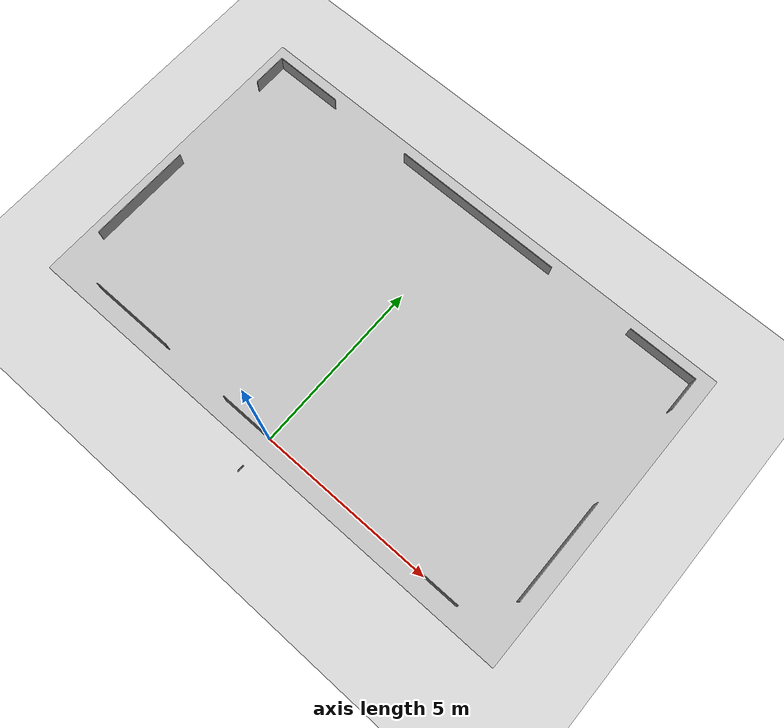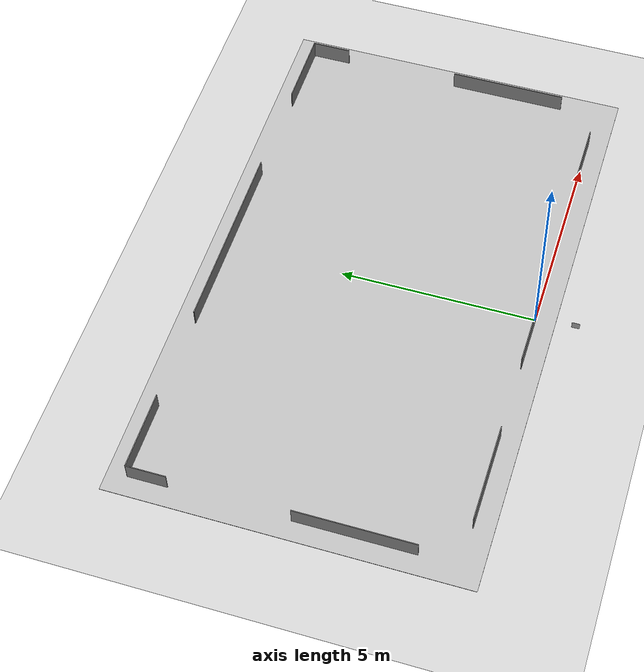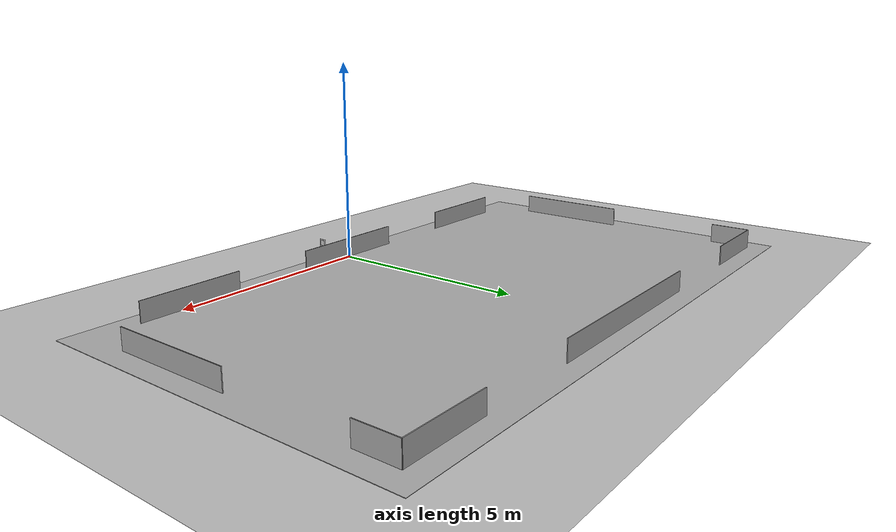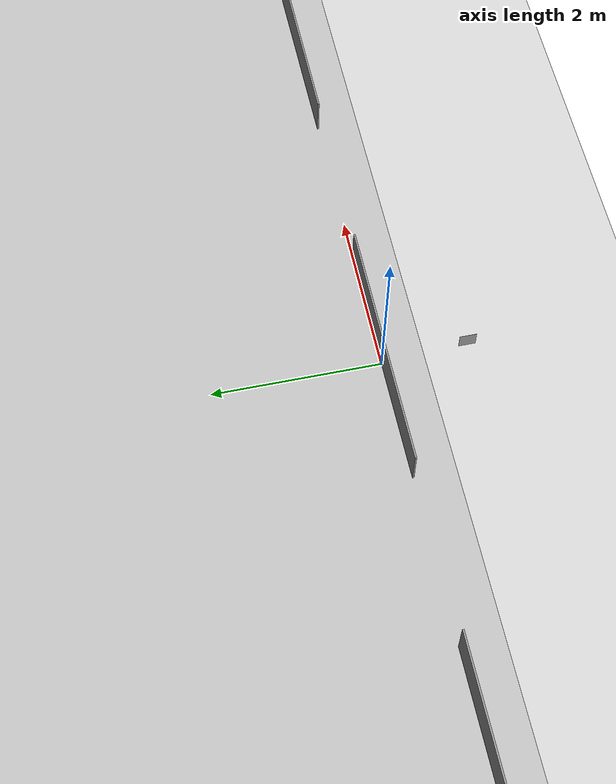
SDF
<sdf version="1.4">
 <world name="LLSF">
  <physics type="ode">
   <max_step_size>0.004</max_step_size>
   <real_time_factor>1</real_time_factor>
   <real_time_update_rate>300</real_time_update_rate>
  </physics>
  <scene><ambient>0.5 0.5 0.5 1.0</ambient><shadows>0</shadows></scene>
  <include><uri>model://ground_plane</uri></include>
  <include><uri>model://sun</uri></include>
  <include><uri>model://logistics_league_field_2017</uri></include>
  <include><name>tag_01</name><uri>model://tag</uri><pose>0 -1 0.2 0 0 0</pose></include>
  <include><name>tag_02</name><uri>model://tag</uri><pose>0 -1 0.2 0 0 0</pose></include>
  <include><name>tag_17</name><uri>model://tag</uri><pose>0 -1 0.2 0 0 0</pose></include>
  <include><name>tag_18</name><uri>model://tag</uri><pose>0 -1 0.2 0 0 0</pose></include>
  <include><name>tag_33</name><uri>model://tag</uri><pose>0 -1 0.2 0 0 0</pose></include>
  <include><name>tag_34</name><uri>model://tag</uri><pose>0 -1 0.2 0 0 0</pose></include>
  <include><name>tag_177</name><uri>model://tag</uri><pose>0 -1 0.2 0 0 0</pose></include>
  <include><name>tag_178</name><uri>model://tag</uri><pose>0 -1 0.2 0 0 0</pose></include>
  <include><name>tag_65</name><uri>model://tag</uri><pose>0 -1 0.2 0 0 0</pose></include>
  <include><name>tag_66</name><uri>model://tag</uri><pose>0 -1 0.2 0 0 0</pose></include>
  <include><name>tag_81</name><uri>model://tag</uri><pose>0 -1 0.2 0 0 0</pose></include>
  <include><name>tag_82</name><uri>model://tag</uri><pose>0 -1 0.2 0 0 0</pose></include>
  <include><name>tag_97</name><uri>model://tag</uri><pose>0 -1 0.2 0 0 0</pose></include>
  <include><name>tag_98</name><uri>model://tag</uri><pose>0 -1 0.2 0 0 0</pose></include>
  <include><name>tag_113</name><uri>model://tag</uri><pose>0 -1 0.2 0 0 0</pose></include>
  <include><name>tag_114</name><uri>model://tag</uri><pose>0 -1 0.2 0 0 0</pose></include>
  <include><name>tag_129</name><uri>model://tag</uri><pose>0 -1 0.2 0 0 0</pose></include>
  <include><name>tag_130</name><uri>model://tag</uri><pose>0 -1 0.2 0 0 0</pose></include>
  <include><name>tag_145</name><uri>model://tag</uri><pose>0 -1 0.2 0 0 0</pose></include>
  <include><name>tag_146</name><uri>model://tag</uri><pose>0 -1 0.2 0 0 0</pose></include>
  <include><name>tag_161</name><uri>model://tag</uri><pose>0 -1 0.2 0 0 0</pose></include>
  <include><name>tag_162</name><uri>model://tag</uri><pose>0 -1 0.2 0 0 0</pose></include>
  <include><name>tag_49</name><uri>model://tag</uri><pose>0 -1 0.2 0 0 0</pose></include>
  <include><name>tag_50</name><uri>model://tag</uri><pose>0 -1 0.2 0 0 0</pose></include>
  <include><name>tag_193</name><uri>model://tag</uri><pose>0 -1 0.2 0 0 0</pose></include>
  <include><name>tag_194</name><uri>model://tag</uri><pose>0 -1 0.2 0 0 0</pose></include>
  <include><name>tag_210</name><uri>model://tag</uri><pose>0 -1 0.2 0 0 0</pose></include>
  <include><name>tag_209</name><uri>model://tag</uri><pose>0 -1 0.2 0 0 0</pose></include>
  <plugin name="llsf_refbox_comm" filename="libllsf_refbox_comm.so"/>
  <plugin name="mps_opcua" filename="libmps_opcua.so"/>
  <plugin name="timesync" filename="libtimesync.so"/>
  <plugin name="mps_placement" filename="libmps_placement.so"/>
 </world>
</sdf>

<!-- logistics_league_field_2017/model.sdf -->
<sdf version="1.5">
  <model name="Logistics League Field 2017">
    <pose>0 4 0 0 0 0</pose>
    <static>true</static>
    <link name="field">
      <pose>0 0 0.01 0 0 0</pose>
      <collision name="collision">
        <geometry>
          <plane>
            <normal>0 0 1</normal>
            <size>15 9</size>
          </plane>
        </geometry>
        <surface>
          <friction>
            <ode>
              <mu>100</mu>
              <mu2>50</mu2>
            </ode>
          </friction>
        </surface>
      </collision>
      <visual name="carpet">
        <cast_shadows>false</cast_shadows>
        <geometry>
          <plane>
            <normal>0 0 1</normal>
            <size>15 9</size>
          </plane>
        </geometry>
        <material>
          <script>
            <uri>model://logistics_league_field_2017/materials/scripts/</uri>
            <uri>model://logistics_league_field_2017/materials/textures/</uri>
            <name>Logistics_League_Field/Image</name>
          </script>
        </material>
      </visual>
    </link>

    <link name="wall_bottom_middle_left_outer">
      <pose>-4.75 -4 0.25 0 0 1.570796327</pose>
      <visual name="wall_bottom_middle_left_outer-visual">
        <geometry>
          <box>
            <size>.02 2.5 .5</size>
          </box>
        </geometry>
        <cast_shadows>false</cast_shadows>
        <material>
          <script>
            <uri>file://media/materials/scripts/gazebo.material</uri>
            <name>Gazebo/Grey</name>
          </script>
        </material>
      </visual>
      <collision name="wall_bottom_middle_left_outer-collision">
        <geometry>
          <box>
            <size>.02 2.5 .5</size>
          </box>
        </geometry>
      </collision>
    </link>

    <link name="wall_bottom_middle">
      <pose>0 -4 0.25 0 0 1.570796327</pose>
      <visual name="wall_bottom_middle_right-visual">
        <geometry>
          <box>
            <size>.02 3 .5</size>
          </box>
        </geometry>
        <cast_shadows>false</cast_shadows>
        <material>
          <script>
            <uri>file://media/materials/scripts/gazebo.material</uri>
            <name>Gazebo/Grey</name>
          </script>
        </material>
      </visual>
      <collision name="wall_bottom_middle_right-collision">
        <geometry>
          <box>
            <size>.02 3 .5</size>
          </box>
        </geometry>
      </collision>
    </link>

    <link name="wall_bottom_middle_right_outer">
      <pose>4.75 -4 0.25 0 0 1.570796327</pose>
      <visual name="wall_bottom_middle_right_outer-visual">
        <geometry>
          <box>
            <size>.02 2.5 .5</size>
          </box>
        </geometry>
        <cast_shadows>false</cast_shadows>
        <material>
          <script>
            <uri>file://media/materials/scripts/gazebo.material</uri>
            <name>Gazebo/Grey</name>
          </script>
        </material>
      </visual>
      <collision name="wall_bottom_middle_right_outer-collision">
        <geometry>
          <box>
            <size>.02 2.5 .5</size>
          </box>
        </geometry>
      </collision>
    </link>

    <link name="wall_left_bottom">
      <pose>-7 -1.5 0.25 0 0 0</pose>
      <visual name="wall_left_bottom-visual">
        <geometry>
          <box>
            <size>.02 3 .5</size>
          </box>
        </geometry>
        <cast_shadows>false</cast_shadows>
        <material>
          <script>
            <uri>file://media/materials/scripts/gazebo.material</uri>
            <name>Gazebo/Grey</name>
          </script>
        </material>
      </visual>
      <collision name="wall_left_bottom-collision">
        <geometry>
          <box>
            <size>.02 3 .5</size>
          </box>
        </geometry>
      </collision>
    </link>

    <link name="wall_left_top">
      <pose>-7 3.5 0.25 0 0 0</pose>
      <visual name="wall_left_top-visual">
        <geometry>
          <box>
            <size>.02 1 .5</size>
          </box>
        </geometry>
        <cast_shadows>false</cast_shadows>
        <material>
          <script>
            <uri>file://media/materials/scripts/gazebo.material</uri>
            <name>Gazebo/Grey</name>
          </script>
        </material>
      </visual>
      <collision name="wall_left_top-collision">
        <geometry>
          <box>
            <size>.02 1 .5</size>
          </box>
        </geometry>
      </collision>
    </link>

    <link name="wall_right_bottom">
      <pose>7 -1.5 0.25 0 0 0</pose>
      <visual name="wall_right_bottom-visual">
        <geometry>
          <box>
            <size>.02 3 .5</size>
          </box>
        </geometry>
        <cast_shadows>false</cast_shadows>
        <material>
          <script>
            <uri>file://media/materials/scripts/gazebo.material</uri>
            <name>Gazebo/Grey</name>
          </script>
        </material>
      </visual>
      <collision name="wall_right_bottom-collision">
        <geometry>
          <box>
            <size>.02 3 .5</size>
          </box>
        </geometry>
      </collision>
    </link>

    <link name="wall_right_top">
      <pose>7 3.5 0.25 0 0 0</pose>
      <visual name="wall_right_top-visual">
        <geometry>
          <box>
            <size>.02 1 .5</size>
          </box>
        </geometry>
        <cast_shadows>false</cast_shadows>
        <material>
          <script>
            <uri>file://media/materials/scripts/gazebo.material</uri>
            <name>Gazebo/Grey</name>
          </script>
        </material>
      </visual>
      <collision name="wall_right_top-collision">
        <geometry>
          <box>
            <size>.02 1 .5</size>
          </box>
        </geometry>
      </collision>
    </link>

    <link name="wall_top_middle">
      <pose>0 4 0.25 0 0 1.570796327</pose>
      <visual name="wall_top_middle-visual">
        <geometry>
          <box>
            <size>.02 5 .5</size>
          </box>
        </geometry>
        <cast_shadows>false</cast_shadows>
        <material>
          <script>
            <uri>file://media/materials/scripts/gazebo.material</uri>
            <name>Gazebo/Grey</name>
          </script>
        </material>
      </visual>
      <collision name="wall_top_middle-collision">
        <geometry>
          <box>
            <size>.02 5 .5</size>
          </box>
        </geometry>
      </collision>
    </link>

    <link name="wall_top_left">
      <pose>-6 4 0.25 0 0 1.570796327</pose>
      <visual name="wall_top_left-visual">
        <geometry>
          <box>
            <size>.02 2 .5</size>
          </box>
        </geometry>
        <cast_shadows>false</cast_shadows>
        <material>
          <script>
            <uri>file://media/materials/scripts/gazebo.material</uri>
            <name>Gazebo/Grey</name>
          </script>
        </material>
      </visual>
      <collision name="wall_top_left-collision">
        <geometry>
          <box>
            <size>.02 2 .5</size>
          </box>
        </geometry>
      </collision>
    </link>

    <link name="wall_top_right">
      <pose>6 4 0.25 0 0 1.570796327</pose>
      <visual name="wall_top_right-visual">
        <geometry>
          <box>
             <size>.02 2 .5</size>
          </box>
        </geometry>
        <cast_shadows>false</cast_shadows>
        <material>
          <script>
            <uri>file://media/materials/scripts/gazebo.material</uri>
            <name>Gazebo/Grey</name>
          </script>
        </material>
      </visual>
      <collision name="wall_top_right-collision">
        <geometry>
          <box>
            <size>.02 2 .5</size>
          </box>
        </geometry>
      </collision>
    </link>

  </model>
</sdf>

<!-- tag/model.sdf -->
<sdf version="1.4">
  <model name="tag">
    <static>false</static>
    <link name="link">
      <pose>0 0 0 1.57 0 1.57</pose>
      <gravity>false</gravity>
      <!-- White background for tag -->

      <visual name="tag_background">
        <cast_shadows>false</cast_shadows>
        <pose>0 0 0 0 0 0</pose>
        <geometry>
          <plane>
            <normal>0 0 1</normal>
            <size>0.2 0.2</size>
          </plane>
        </geometry>
	<material>
          <script>
            <uri>model://tag/materials/scripts</uri>
            <uri>model://tag/materials/textures</uri>
            <name>tag/empty</name>
          </script>
	</material>
      </visual>
      <!-- The visual tag pattern is changed by the plugin depending on the name of this model. So spawn it with the name tag_01 to let it have the patter with id 01. -->
      <visual name="pattern">
        <cast_shadows>false</cast_shadows>
        <pose>0 0 0.001 0 0 0</pose>
        <geometry>
          <plane>
            <normal>0 0 1</normal>
            <size>0.135 0.135</size>
          </plane>
        </geometry>
	<material>
          <script>
            <uri>model://tag/materials/scripts</uri>
            <uri>model://tag/materials/textures</uri>
            <name>tag/tag_01</name>
          </script>
	</material>
      </visual>
    </link>

    <!-- Plugin to create the right pattern and publish the position -->
    <plugin name="Tag" filename="libtag.so"/>
    <plugin name="GPS" filename="libgps.so"/>
  </model>
</sdf>
